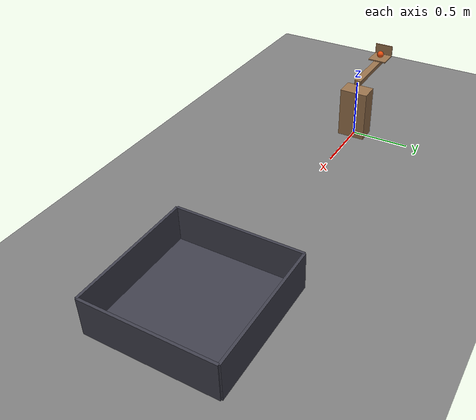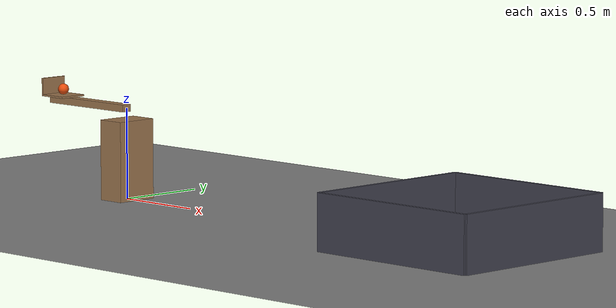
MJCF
<mujoco model="catapult_into_a_bucket">
  <compiler angle="radian"/>
  <option timestep="0.002"/>
  <worldbody>
    <geom name="floor" type="plane" size="8 8 0.1" friction="0.8 0.005 0.002"/>
    <geom name="catapult_stand" type="box" pos="0 0 0.22" size="0.08 0.12 0.22" rgba="0.6 0.45 0.3 1"/>
    <body name="catapult" pos="0 0 0.5">
      <joint name="catapult_hinge" type="hinge" pos="0 0 0" axis="0 1 0" limited="true" range="0 0.663225" stiffness="6.3" springref="1.5708" damping="0.02" armature="0.01"/>
      <geom name="catapult_arm" type="box" pos="-0.3 0 0" size="0.3 0.03 0.02" mass="0.3" rgba="0.6 0.45 0.3 1"/>
      <geom name="catapult_scoop_base" type="box" pos="-0.52 0 0.025" size="0.08 0.08 0.005" mass="0.02" rgba="0.6 0.45 0.3 1"/>
      <geom name="catapult_scoop_back" type="box" pos="-0.605 0 0.07" size="0.005 0.08 0.05" mass="0.01" rgba="0.6 0.45 0.3 1"/>
    </body>
    <body name="ball" pos="-0.52 0 0.56">
      <freejoint/>
      <geom name="ball" type="sphere" pos="0 0 0" size="0.03" mass="0.1" condim="6" friction="0.8 0.01 0.004" solref="0.01 1" rgba="0.9 0.3 0.05 1"/>
    </body>
    <body name="bucket">
      <geom name="bucket_base" type="box" pos="2.48 0 0.01" size="0.5 0.5 0.01" solref="0.01 1" rgba="0.25 0.25 0.3 1"/>
      <geom name="bucket_near_wall" type="box" pos="1.98 0 0.15" size="0.01 0.5 0.15" solref="0.01 1" rgba="0.25 0.25 0.3 1"/>
      <geom name="bucket_far_wall" type="box" pos="2.98 0 0.15" size="0.01 0.5 0.15" solref="0.01 1" rgba="0.25 0.25 0.3 1"/>
      <geom name="bucket_left_wall" type="box" pos="2.48 0.5 0.15" size="0.5 0.01 0.15" solref="0.01 1" rgba="0.25 0.25 0.3 1"/>
      <geom name="bucket_right_wall" type="box" pos="2.48 -0.5 0.15" size="0.5 0.01 0.15" solref="0.01 1" rgba="0.25 0.25 0.3 1"/>
    </body>
  </worldbody>
  <keyframe>
    <key name="start" qpos="0 -0.52 0 0.56 1 0 0 0" qvel="0 0 0 0 0 0 0"/>
  </keyframe>
</mujoco>
